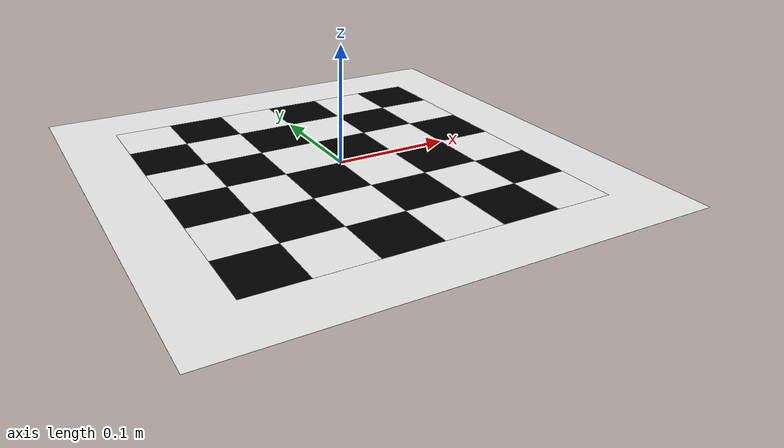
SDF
<?xml version="1.0"?>
<sdf version="1.4">
  <model name="checkerboard_6_6_0_05">
  <static>true</static>
  <link name="checkerboard_6_6_0_05_body">
      <visual name="checker_0_0">
        <pose>-0.125 -0.125 0 0 0 0</pose>
        <geometry>
          <box>
            <size>0.05 0.05 0.0002</size>
          </box>
        </geometry>
        <material>
          <ambient>0 0 0 1</ambient>
          <diffuse>0 0 0 1</diffuse>
          <specular>0 0 0 1</specular>
          <emissive>0 0 0 1</emissive>
        </material>
      </visual>
      <visual name="checker_0_1">
        <pose>-0.075 -0.125 0 0 0 0</pose>
        <geometry>
          <box>
            <size>0.05 0.05 0.0002</size>
          </box>
        </geometry>
        <material>
          <ambient>1 1 1 1</ambient>
          <diffuse>1 1 1 1</diffuse>
          <specular>1 1 1 1</specular>
          <emissive>1 1 1 1</emissive>
        </material>
      </visual>
      <visual name="checker_0_2">
        <pose>-0.025 -0.125 0 0 0 0</pose>
        <geometry>
          <box>
            <size>0.05 0.05 0.0002</size>
          </box>
        </geometry>
        <material>
          <ambient>0 0 0 1</ambient>
          <diffuse>0 0 0 1</diffuse>
          <specular>0 0 0 1</specular>
          <emissive>0 0 0 1</emissive>
        </material>
      </visual>
      <visual name="checker_0_3">
        <pose>0.025 -0.125 0 0 0 0</pose>
        <geometry>
          <box>
            <size>0.05 0.05 0.0002</size>
          </box>
        </geometry>
        <material>
          <ambient>1 1 1 1</ambient>
          <diffuse>1 1 1 1</diffuse>
          <specular>1 1 1 1</specular>
          <emissive>1 1 1 1</emissive>
        </material>
      </visual>
      <visual name="checker_0_4">
        <pose>0.075 -0.125 0 0 0 0</pose>
        <geometry>
          <box>
            <size>0.05 0.05 0.0002</size>
          </box>
        </geometry>
        <material>
          <ambient>0 0 0 1</ambient>
          <diffuse>0 0 0 1</diffuse>
          <specular>0 0 0 1</specular>
          <emissive>0 0 0 1</emissive>
        </material>
      </visual>
      <visual name="checker_0_5">
        <pose>0.125 -0.125 0 0 0 0</pose>
        <geometry>
          <box>
            <size>0.05 0.05 0.0002</size>
          </box>
        </geometry>
        <material>
          <ambient>1 1 1 1</ambient>
          <diffuse>1 1 1 1</diffuse>
          <specular>1 1 1 1</specular>
          <emissive>1 1 1 1</emissive>
        </material>
      </visual>
      <visual name="checker_1_0">
        <pose>-0.125 -0.075 0 0 0 0</pose>
        <geometry>
          <box>
            <size>0.05 0.05 0.0002</size>
          </box>
        </geometry>
        <material>
          <ambient>1 1 1 1</ambient>
          <diffuse>1 1 1 1</diffuse>
          <specular>1 1 1 1</specular>
          <emissive>1 1 1 1</emissive>
        </material>
      </visual>
      <visual name="checker_1_1">
        <pose>-0.075 -0.075 0 0 0 0</pose>
        <geometry>
          <box>
            <size>0.05 0.05 0.0002</size>
          </box>
        </geometry>
        <material>
          <ambient>0 0 0 1</ambient>
          <diffuse>0 0 0 1</diffuse>
          <specular>0 0 0 1</specular>
          <emissive>0 0 0 1</emissive>
        </material>
      </visual>
      <visual name="checker_1_2">
        <pose>-0.025 -0.075 0 0 0 0</pose>
        <geometry>
          <box>
            <size>0.05 0.05 0.0002</size>
          </box>
        </geometry>
        <material>
          <ambient>1 1 1 1</ambient>
          <diffuse>1 1 1 1</diffuse>
          <specular>1 1 1 1</specular>
          <emissive>1 1 1 1</emissive>
        </material>
      </visual>
      <visual name="checker_1_3">
        <pose>0.025 -0.075 0 0 0 0</pose>
        <geometry>
          <box>
            <size>0.05 0.05 0.0002</size>
          </box>
        </geometry>
        <material>
          <ambient>0 0 0 1</ambient>
          <diffuse>0 0 0 1</diffuse>
          <specular>0 0 0 1</specular>
          <emissive>0 0 0 1</emissive>
        </material>
      </visual>
      <visual name="checker_1_4">
        <pose>0.075 -0.075 0 0 0 0</pose>
        <geometry>
          <box>
            <size>0.05 0.05 0.0002</size>
          </box>
        </geometry>
        <material>
          <ambient>1 1 1 1</ambient>
          <diffuse>1 1 1 1</diffuse>
          <specular>1 1 1 1</specular>
          <emissive>1 1 1 1</emissive>
        </material>
      </visual>
      <visual name="checker_1_5">
        <pose>0.125 -0.075 0 0 0 0</pose>
        <geometry>
          <box>
            <size>0.05 0.05 0.0002</size>
          </box>
        </geometry>
        <material>
          <ambient>0 0 0 1</ambient>
          <diffuse>0 0 0 1</diffuse>
          <specular>0 0 0 1</specular>
          <emissive>0 0 0 1</emissive>
        </material>
      </visual>
      <visual name="checker_2_0">
        <pose>-0.125 -0.025 0 0 0 0</pose>
        <geometry>
          <box>
            <size>0.05 0.05 0.0002</size>
          </box>
        </geometry>
        <material>
          <ambient>0 0 0 1</ambient>
          <diffuse>0 0 0 1</diffuse>
          <specular>0 0 0 1</specular>
          <emissive>0 0 0 1</emissive>
        </material>
      </visual>
      <visual name="checker_2_1">
        <pose>-0.075 -0.025 0 0 0 0</pose>
        <geometry>
          <box>
            <size>0.05 0.05 0.0002</size>
          </box>
        </geometry>
        <material>
          <ambient>1 1 1 1</ambient>
          <diffuse>1 1 1 1</diffuse>
          <specular>1 1 1 1</specular>
          <emissive>1 1 1 1</emissive>
        </material>
      </visual>
      <visual name="checker_2_2">
        <pose>-0.025 -0.025 0 0 0 0</pose>
        <geometry>
          <box>
            <size>0.05 0.05 0.0002</size>
          </box>
        </geometry>
        <material>
          <ambient>0 0 0 1</ambient>
          <diffuse>0 0 0 1</diffuse>
          <specular>0 0 0 1</specular>
          <emissive>0 0 0 1</emissive>
        </material>
      </visual>
      <visual name="checker_2_3">
        <pose>0.025 -0.025 0 0 0 0</pose>
        <geometry>
          <box>
            <size>0.05 0.05 0.0002</size>
          </box>
        </geometry>
        <material>
          <ambient>1 1 1 1</ambient>
          <diffuse>1 1 1 1</diffuse>
          <specular>1 1 1 1</specular>
          <emissive>1 1 1 1</emissive>
        </material>
      </visual>
      <visual name="checker_2_4">
        <pose>0.075 -0.025 0 0 0 0</pose>
        <geometry>
          <box>
            <size>0.05 0.05 0.0002</size>
          </box>
        </geometry>
        <material>
          <ambient>0 0 0 1</ambient>
          <diffuse>0 0 0 1</diffuse>
          <specular>0 0 0 1</specular>
          <emissive>0 0 0 1</emissive>
        </material>
      </visual>
      <visual name="checker_2_5">
        <pose>0.125 -0.025 0 0 0 0</pose>
        <geometry>
          <box>
            <size>0.05 0.05 0.0002</size>
          </box>
        </geometry>
        <material>
          <ambient>1 1 1 1</ambient>
          <diffuse>1 1 1 1</diffuse>
          <specular>1 1 1 1</specular>
          <emissive>1 1 1 1</emissive>
        </material>
      </visual>
      <visual name="checker_3_0">
        <pose>-0.125 0.025 0 0 0 0</pose>
        <geometry>
          <box>
            <size>0.05 0.05 0.0002</size>
          </box>
        </geometry>
        <material>
          <ambient>1 1 1 1</ambient>
          <diffuse>1 1 1 1</diffuse>
          <specular>1 1 1 1</specular>
          <emissive>1 1 1 1</emissive>
        </material>
      </visual>
      <visual name="checker_3_1">
        <pose>-0.075 0.025 0 0 0 0</pose>
        <geometry>
          <box>
            <size>0.05 0.05 0.0002</size>
          </box>
        </geometry>
        <material>
          <ambient>0 0 0 1</ambient>
          <diffuse>0 0 0 1</diffuse>
          <specular>0 0 0 1</specular>
          <emissive>0 0 0 1</emissive>
        </material>
      </visual>
      <visual name="checker_3_2">
        <pose>-0.025 0.025 0 0 0 0</pose>
        <geometry>
          <box>
            <size>0.05 0.05 0.0002</size>
          </box>
        </geometry>
        <material>
          <ambient>1 1 1 1</ambient>
          <diffuse>1 1 1 1</diffuse>
          <specular>1 1 1 1</specular>
          <emissive>1 1 1 1</emissive>
        </material>
      </visual>
      <visual name="checker_3_3">
        <pose>0.025 0.025 0 0 0 0</pose>
        <geometry>
          <box>
            <size>0.05 0.05 0.0002</size>
          </box>
        </geometry>
        <material>
          <ambient>0 0 0 1</ambient>
          <diffuse>0 0 0 1</diffuse>
          <specular>0 0 0 1</specular>
          <emissive>0 0 0 1</emissive>
        </material>
      </visual>
      <visual name="checker_3_4">
        <pose>0.075 0.025 0 0 0 0</pose>
        <geometry>
          <box>
            <size>0.05 0.05 0.0002</size>
          </box>
        </geometry>
        <material>
          <ambient>1 1 1 1</ambient>
          <diffuse>1 1 1 1</diffuse>
          <specular>1 1 1 1</specular>
          <emissive>1 1 1 1</emissive>
        </material>
      </visual>
      <visual name="checker_3_5">
        <pose>0.125 0.025 0 0 0 0</pose>
        <geometry>
          <box>
            <size>0.05 0.05 0.0002</size>
          </box>
        </geometry>
        <material>
          <ambient>0 0 0 1</ambient>
          <diffuse>0 0 0 1</diffuse>
          <specular>0 0 0 1</specular>
          <emissive>0 0 0 1</emissive>
        </material>
      </visual>
      <visual name="checker_4_0">
        <pose>-0.125 0.075 0 0 0 0</pose>
        <geometry>
          <box>
            <size>0.05 0.05 0.0002</size>
          </box>
        </geometry>
        <material>
          <ambient>0 0 0 1</ambient>
          <diffuse>0 0 0 1</diffuse>
          <specular>0 0 0 1</specular>
          <emissive>0 0 0 1</emissive>
        </material>
      </visual>
      <visual name="checker_4_1">
        <pose>-0.075 0.075 0 0 0 0</pose>
        <geometry>
          <box>
            <size>0.05 0.05 0.0002</size>
          </box>
        </geometry>
        <material>
          <ambient>1 1 1 1</ambient>
          <diffuse>1 1 1 1</diffuse>
          <specular>1 1 1 1</specular>
          <emissive>1 1 1 1</emissive>
        </material>
      </visual>
      <visual name="checker_4_2">
        <pose>-0.025 0.075 0 0 0 0</pose>
        <geometry>
          <box>
            <size>0.05 0.05 0.0002</size>
          </box>
        </geometry>
        <material>
          <ambient>0 0 0 1</ambient>
          <diffuse>0 0 0 1</diffuse>
          <specular>0 0 0 1</specular>
          <emissive>0 0 0 1</emissive>
        </material>
      </visual>
      <visual name="checker_4_3">
        <pose>0.025 0.075 0 0 0 0</pose>
        <geometry>
          <box>
            <size>0.05 0.05 0.0002</size>
          </box>
        </geometry>
        <material>
          <ambient>1 1 1 1</ambient>
          <diffuse>1 1 1 1</diffuse>
          <specular>1 1 1 1</specular>
          <emissive>1 1 1 1</emissive>
        </material>
      </visual>
      <visual name="checker_4_4">
        <pose>0.075 0.075 0 0 0 0</pose>
        <geometry>
          <box>
            <size>0.05 0.05 0.0002</size>
          </box>
        </geometry>
        <material>
          <ambient>0 0 0 1</ambient>
          <diffuse>0 0 0 1</diffuse>
          <specular>0 0 0 1</specular>
          <emissive>0 0 0 1</emissive>
        </material>
      </visual>
      <visual name="checker_4_5">
        <pose>0.125 0.075 0 0 0 0</pose>
        <geometry>
          <box>
            <size>0.05 0.05 0.0002</size>
          </box>
        </geometry>
        <material>
          <ambient>1 1 1 1</ambient>
          <diffuse>1 1 1 1</diffuse>
          <specular>1 1 1 1</specular>
          <emissive>1 1 1 1</emissive>
        </material>
      </visual>
      <visual name="checker_5_0">
        <pose>-0.125 0.125 0 0 0 0</pose>
        <geometry>
          <box>
            <size>0.05 0.05 0.0002</size>
          </box>
        </geometry>
        <material>
          <ambient>1 1 1 1</ambient>
          <diffuse>1 1 1 1</diffuse>
          <specular>1 1 1 1</specular>
          <emissive>1 1 1 1</emissive>
        </material>
      </visual>
      <visual name="checker_5_1">
        <pose>-0.075 0.125 0 0 0 0</pose>
        <geometry>
          <box>
            <size>0.05 0.05 0.0002</size>
          </box>
        </geometry>
        <material>
          <ambient>0 0 0 1</ambient>
          <diffuse>0 0 0 1</diffuse>
          <specular>0 0 0 1</specular>
          <emissive>0 0 0 1</emissive>
        </material>
      </visual>
      <visual name="checker_5_2">
        <pose>-0.025 0.125 0 0 0 0</pose>
        <geometry>
          <box>
            <size>0.05 0.05 0.0002</size>
          </box>
        </geometry>
        <material>
          <ambient>1 1 1 1</ambient>
          <diffuse>1 1 1 1</diffuse>
          <specular>1 1 1 1</specular>
          <emissive>1 1 1 1</emissive>
        </material>
      </visual>
      <visual name="checker_5_3">
        <pose>0.025 0.125 0 0 0 0</pose>
        <geometry>
          <box>
            <size>0.05 0.05 0.0002</size>
          </box>
        </geometry>
        <material>
          <ambient>0 0 0 1</ambient>
          <diffuse>0 0 0 1</diffuse>
          <specular>0 0 0 1</specular>
          <emissive>0 0 0 1</emissive>
        </material>
      </visual>
      <visual name="checker_5_4">
        <pose>0.075 0.125 0 0 0 0</pose>
        <geometry>
          <box>
            <size>0.05 0.05 0.0002</size>
          </box>
        </geometry>
        <material>
          <ambient>1 1 1 1</ambient>
          <diffuse>1 1 1 1</diffuse>
          <specular>1 1 1 1</specular>
          <emissive>1 1 1 1</emissive>
        </material>
      </visual>
      <visual name="checker_5_5">
        <pose>0.125 0.125 0 0 0 0</pose>
        <geometry>
          <box>
            <size>0.05 0.05 0.0002</size>
          </box>
        </geometry>
        <material>
          <ambient>0 0 0 1</ambient>
          <diffuse>0 0 0 1</diffuse>
          <specular>0 0 0 1</specular>
          <emissive>0 0 0 1</emissive>
        </material>
      </visual>
      <visual name="checker_backdrop">
        <pose>0 0 0 0 0 0</pose>
        <geometry>
          <box>
            <size>0.4 0.4 0.0001</size>
          </box>
        </geometry>
        <material>
          <ambient>1 1 1 1</ambient>
          <diffuse>1 1 1 1</diffuse>
          <specular>1 1 1 1</specular>
          <emissive>1 1 1 1</emissive>
        </material>
      </visual>
    </link>
  </model>
</sdf>
